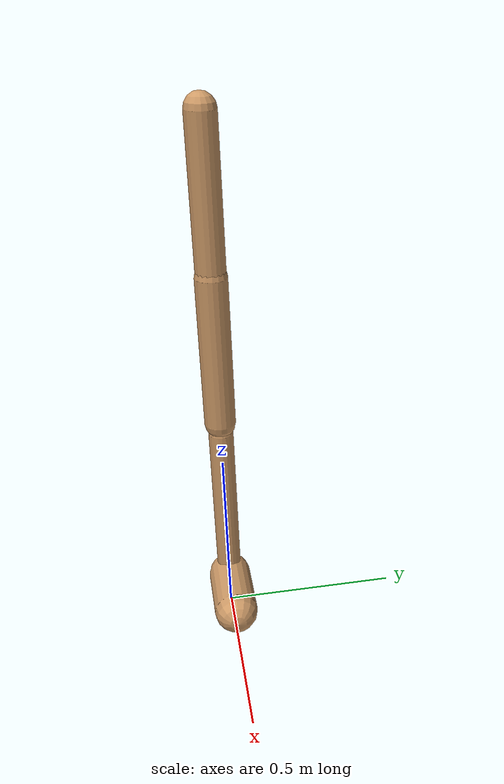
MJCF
<mujoco model="walker2d">
  <compiler angle="degree" coordinate="global" inertiafromgeom="true" />
  <default>
    <joint armature="0.01" damping=".1" limited="true" />
    <geom conaffinity="0" condim="3" contype="1" density="1000" friction="0.8 .1 .1" rgba="0.8 0.6 .4 1" />
  </default>
  <option integrator="RK4" timestep="0.002" />
  <worldbody>

    <body name="torso" pos="0 0 -0.06607628224632373">
      <joint armature="0" axis="1 0 0" damping="0" limited="false" name="ignorex" pos="0 0 0" stiffness="0" type="slide" />
      <joint armature="0" axis="0 0 1" damping="0" limited="false" name="ignorez" pos="0 0 0" ref="1.25" stiffness="0" type="slide" />
      <joint armature="0" axis="0 1 0" damping="0" limited="false" name="ignorey" pos="0 0 0" stiffness="0" type="hinge" />
      <geom fromto="0 0 1.45 0 0 1.05" name="torso_geom" size="0.03982488687445085" type="capsule" />
      <body name="thigh">
        <joint axis="0 -1 0" name="thigh_joint" pos="0 0 1.05" range="-150 0" type="hinge" />
        <geom fromto="0.0 0.0 1.05 0.0 0.0 0.6312992915903639" name="thigh_geom" size="0.042883433032958745" type="capsule" />
        <body name="leg" pos="0.0 0.0 0.03129929159036393">
          <joint axis="0 -1 0" name="leg_joint" pos="0 0 0.6" range="-150 0" type="hinge" />
          <geom fromto="0.0 0.0 0.6 0.0 0.0 0.13477699065595986" name="leg_geom" size="0.03430674642636699" type="capsule" />
          <body name="foot" pos="0.0 0.0 0.03477699065595985">
            <joint axis="0 -1 0" name="foot_joint" pos="0 0 0.1" range="-45 45" type="hinge" />
            <geom fromto="0.0 0.0 0.1 0.1728058605764852 0.0 0.1" name="foot_geom" size="0.06134534303687295" type="capsule" />
          </body>
        </body>
      </body>

      <body name="thigh_left">
        <joint axis="0 -1 0" name="thigh_left_joint" pos="0 0 1.05" range="-150 0" type="hinge" />
        <geom fromto="0.0 0.0 1.05 0.0 0.0 0.6312992915903639" name="thigh_left_geom" rgba=".7 .3 .6 1" size="0.042883433032958745" type="capsule" />
        <body name="leg_left" pos="0.0 0.0 0.03129929159036393">
          <joint axis="0 -1 0" name="leg_left_joint" pos="0 0 0.6" range="-150 0" type="hinge" />
          <geom fromto="0.0 0.0 0.6 0.0 0.0 0.13477699065595986" name="leg_left_geom" rgba=".7 .3 .6 1" size="0.03430674642636699" type="capsule" />
          <body name="foot_left" pos="0.0 0.0 0.03477699065595985">
            <joint axis="0 -1 0" name="foot_left_joint" pos="0 0 0.1" range="-45 45" type="hinge" />
            <geom fromto="0.0 0.0 0.1 0.1728058605764852 0.0 0.1" name="foot_left_geom" rgba=".7 .3 .6 1" size="0.06134534303687295" type="capsule" />
          </body>
        </body>
      </body>
    </body>
  </worldbody>
  <actuator>

    <motor ctrllimited="true" ctrlrange="-1.0 1.0" gear="100" joint="thigh_joint" />
    <motor ctrllimited="true" ctrlrange="-1.0 1.0" gear="100" joint="leg_joint" />
    <motor ctrllimited="true" ctrlrange="-1.0 1.0" gear="100" joint="foot_joint" />
    <motor ctrllimited="true" ctrlrange="-1.0 1.0" gear="100" joint="thigh_left_joint" />
    <motor ctrllimited="true" ctrlrange="-1.0 1.0" gear="100" joint="leg_left_joint" />
    <motor ctrllimited="true" ctrlrange="-1.0 1.0" gear="100" joint="foot_left_joint" />

  </actuator>
</mujoco>
